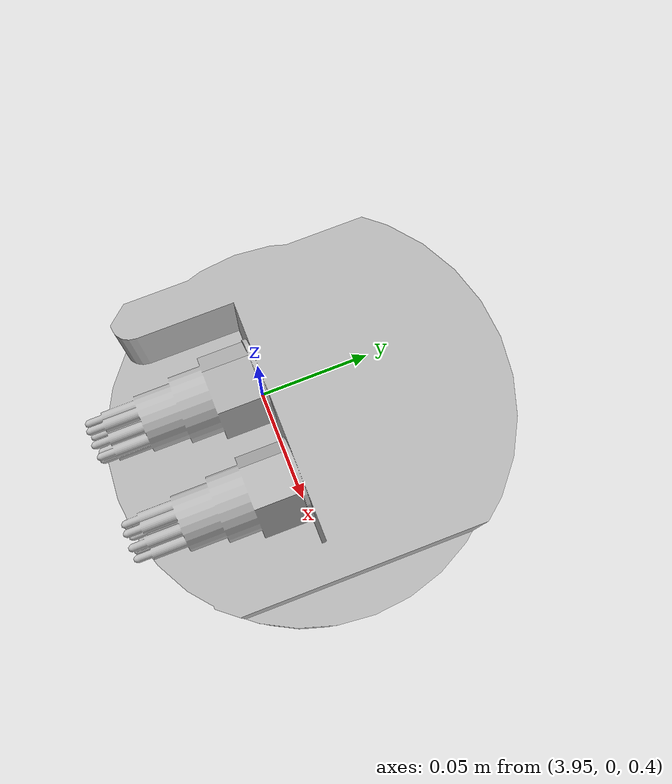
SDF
<?xml version="1.0"?>
<sdf version="1.7">
  <model name="dvl500_300">
    <pose>4 0 0.5 0 0.0 3.14</pose>
    <link name="dvl500_base_link">
      <inertial>
        <pose>0 0 0 0 0 0</pose>
        <mass>3.5</mass>
        <inertia>
          <ixx>0.0195872</ixx>
          <ixy>0</ixy>
          <ixz>0</ixz>
          <iyy>0.0195872</iyy>
          <iyz>0</iyz>
          <izz>0.0151357</izz>
        </inertia>
      </inertial>
      <gravity>1</gravity>

      <!-- Camera sensor -->
      <sensor name="camera" type="camera">
        <camera>
          <horizontal_fov>1.047</horizontal_fov>
          <image>
            <width>320</width>
            <height>240</height>
          </image>
          <clip>
            <near>0.1</near>
            <far>100</far>
          </clip>
        </camera>
        <always_on>1</always_on>
        <update_rate>30</update_rate>
        <visualize>true</visualize>
        <topic>/sensor/camera</topic>
      </sensor>

      <!-- Depth Camera sensor -->
      <sensor name="depth_camera" type="depth_camera">
        <update_rate>10</update_rate>
        <topic>/sensor/depth_camera</topic>
        <enable_metrics>true</enable_metrics>
        <camera>
          <horizontal_fov>1.05</horizontal_fov>
          <image>
            <width>320</width>
            <height>240</height>
            <format>R_FLOAT32</format>
          </image>
          <clip>
            <near>0.1</near>
            <far>10.0</far>
          </clip>
        </camera>
      </sensor>

      <!-- Multibeam Sonar sensor -->
      <sensor name="multibeam_sonar" type="custom" gz:type="multibeam_sonar">
        <always_on>true</always_on>
        <update_rate>30.0</update_rate>
        <topic>/sensor/multibeam_sonar</topic>
        <visualize>true</visualize>
        <gz:multibeam_sonar>
          <ray degrees="true">
            <scan>
                <horizontal>
                  <samples>256</samples>
                  <min_angle>-0.78539816339</min_angle>
                  <max_angle>0.78539816339</max_angle>
                </horizontal>
                <vertical>
                  <rays>3</rays>
                  <min_angle>-0.349066</min_angle>
                  <max_angle>0.349066</max_angle>
                </vertical>
            </scan>
            <range>
                <min>0.1</min>
                <max>5.0</max>
            </range>
          </ray>
        </gz:multibeam_sonar>
      </sensor>

      <self_collide>0</self_collide>
      <enable_wind>0</enable_wind>
      <kinematic>0</kinematic>
      <visual name="dvl500_base_link_visual">
        <pose>0 0 0 0 0 3.14159</pose>
        <geometry>
          <mesh>
            <scale>1 1 1</scale>
            <!-- Mesh is actually for a Nortek DVL1000-4000m for now -->
            <uri>model://meshes/nortek_dvl500_300/DVL500-300m.dae</uri>
          </mesh>
        </geometry>
        <transparency>0</transparency>
        <cast_shadows>1</cast_shadows>
      </visual>
      <collision name="dvl500_base_link_collision">
        <laser_retro>0</laser_retro>
        <max_contacts>10</max_contacts>
        <pose>0 0 0 3.14159 0 0</pose>
        <geometry>
          <cylinder>
            <radius>0.093</radius>
            <length>0.203</length>
          </cylinder>
        </geometry>
        <surface>
          <friction>
            <ode>
              <mu>1</mu>
              <mu2>1</mu2>
              <fdir1>0 0 0</fdir1>
              <slip1>0</slip1>
              <slip2>0</slip2>
            </ode>
            <torsional>
              <coefficient>1</coefficient>
              <patch_radius>0</patch_radius>
              <surface_radius>0</surface_radius>
              <use_patch_radius>1</use_patch_radius>
              <ode>
                <slip>0</slip>
              </ode>
            </torsional>
          </friction>
          <bounce>
            <restitution_coefficient>0</restitution_coefficient>
            <threshold>1e+06</threshold>
          </bounce>
          <contact>
            <collide_without_contact>0</collide_without_contact>
            <collide_without_contact_bitmask>1</collide_without_contact_bitmask>
            <collide_bitmask>1</collide_bitmask>
            <ode>
              <soft_cfm>0</soft_cfm>
              <soft_erp>0.2</soft_erp>
              <kp>1e+13</kp>
              <kd>1</kd>
              <max_vel>0.01</max_vel>
              <min_depth>0</min_depth>
            </ode>
            <bullet>
              <split_impulse>1</split_impulse>
              <split_impulse_penetration_threshold>-0.01</split_impulse_penetration_threshold>
              <soft_cfm>0</soft_cfm>
              <soft_erp>0.2</soft_erp>
              <kp>1e+13</kp>
              <kd>1</kd>
            </bullet>
          </contact>
        </surface>
      </collision>
    </link>
    <static>1</static>
    <allow_auto_disable>1</allow_auto_disable>
  </model>
</sdf>
